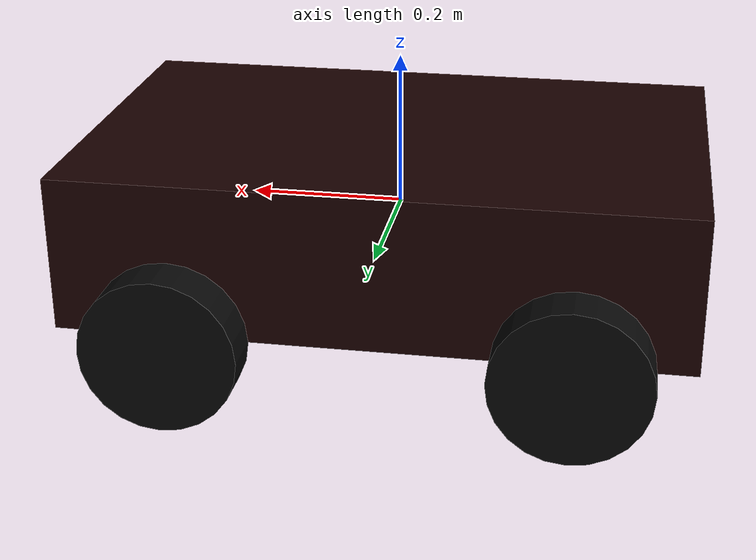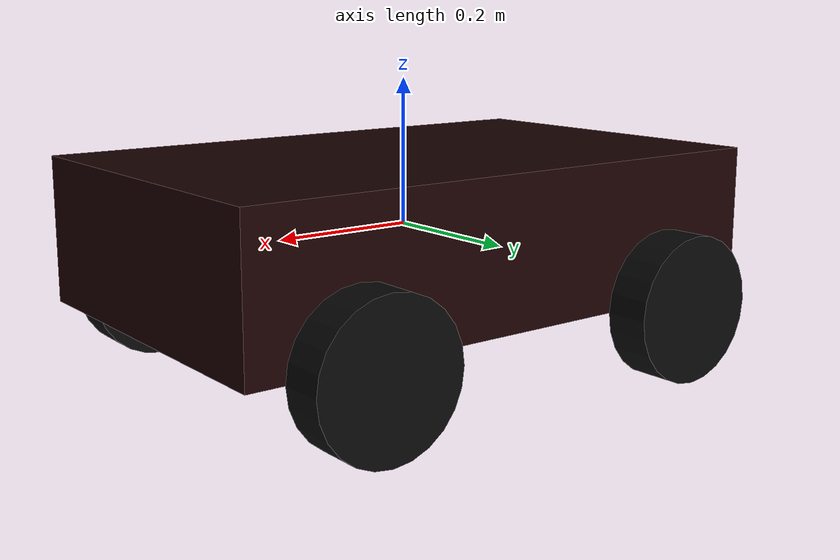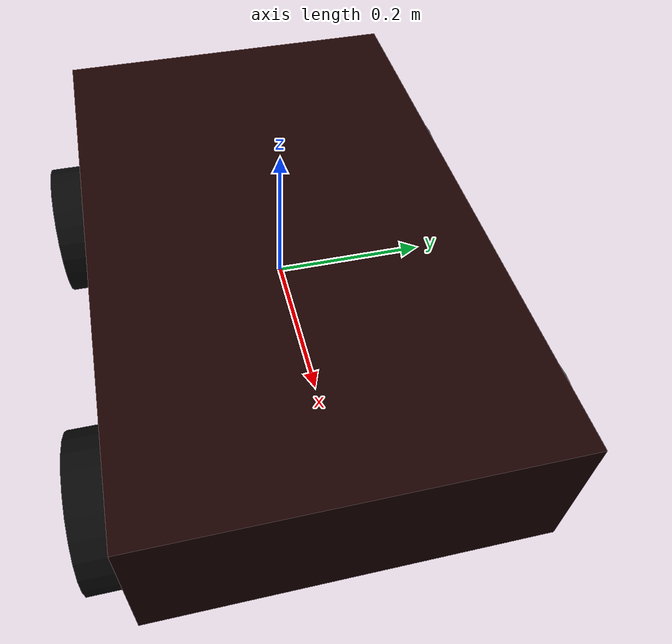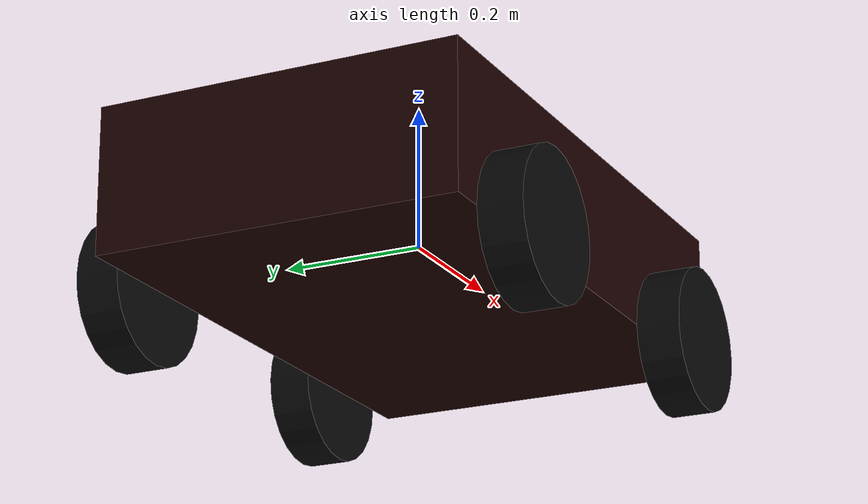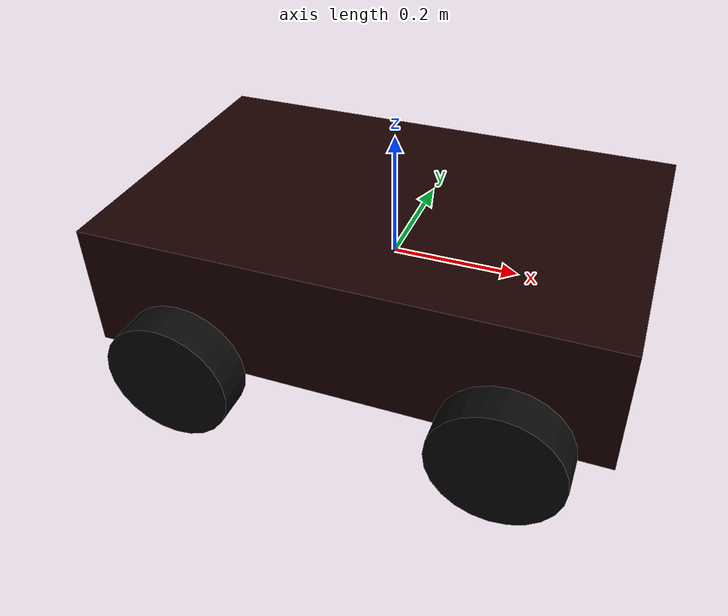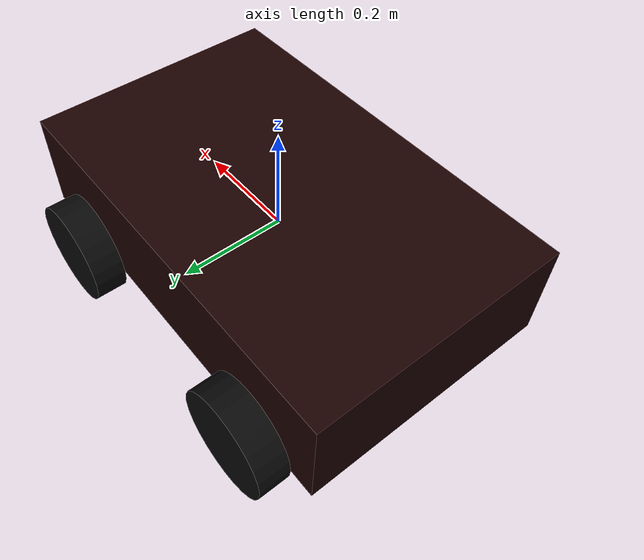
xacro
<?xml version="1.0"?>

<robot
    xmlns:xacro="http://www.ros.org/wiki/xacro"
    name="my_robot">

    <link name="base_link">

        <visual>
            <origin xyz="0 0 0" rpy="0 0 0"/>

            <geometry>
                <box size="0.8 0.5 0.2"/>
            </geometry>

            <material name="red">
                <color rgba="0.1 0.0 0.0 1.0"/>
            </material>
        </visual>

        <collision>
            <origin xyz="0 0 0" rpy="0 0 0"/>

            <geometry>
                <box size="0.8 0.5 0.2"/>
            </geometry>
        </collision>

        <inertial>
            <mass value="5.0"/>

            <inertia
                ixx="0.1208"
                ixy="0.0"
                ixz="0.0"
                iyy="0.2833"
                iyz="0.0"
                izz="0.3708"/>
        </inertial>

    </link>

    <!-- SOL ÖN TEKERLEK                                   -->

    <link name="front_left_wheel_link">

        <visual>
            <origin xyz="0 0 0" rpy="1.5708 0 0"/>

            <geometry>
                <cylinder radius="0.1" length="0.06"/>
            </geometry>

            <material name="wheel_black">
                <color rgba="0.03 0.03 0.03 1.0"/>
            </material>
        </visual>

        <collision>
            <origin xyz="0 0 0" rpy="1.5708 0 0"/>

            <geometry>
                <cylinder radius="0.1" length="0.06"/>
            </geometry>
        </collision>

        <inertial>
            <mass value="0.3"/>

            <inertia
                ixx="0.00084"
                ixy="0.0"
                ixz="0.0"
                iyy="0.0015"
                iyz="0.0"
                izz="0.00084"/>
        </inertial>

    </link>

    <!-- Sol ön tekerleği gövdeye bağlar -->
    <joint name="front_left_wheel_joint" type="continuous">

        <parent link="base_link"/>
        <child link="front_left_wheel_link"/>

        <origin xyz="0.25 0.28 -0.1" rpy="0 0 0"/>

        <axis xyz="0 1 0"/>

    </joint>

    <!-- SAĞ ÖN TEKERLEK                                   -->

    <link name="front_right_wheel_link">

        <visual>
            <origin xyz="0 0 0" rpy="1.5708 0 0"/>

            <geometry>
                <cylinder radius="0.1" length="0.06"/>
            </geometry>

            <material name="wheel_black">
                <color rgba="0.03 0.03 0.03 1.0"/>
            </material>
        </visual>

        <collision>
            <origin xyz="0 0 0" rpy="1.5708 0 0"/>

            <geometry>
                <cylinder radius="0.1" length="0.06"/>
            </geometry>
        </collision>

        <inertial>
            <mass value="0.3"/>

            <inertia
                ixx="0.00084"
                ixy="0.0"
                ixz="0.0"
                iyy="0.0015"
                iyz="0.0"
                izz="0.00084"/>
        </inertial>

    </link>

    <!-- Sağ ön tekerleği gövdeye bağlar -->
    <joint name="front_right_wheel_joint" type="continuous">

        <parent link="base_link"/>
        <child link="front_right_wheel_link"/>

        <origin xyz="0.25 -0.28 -0.1" rpy="0 0 0"/>

        <axis xyz="0 1 0"/>

    </joint>

    <!-- SOL ARKA TEKERLEK                                 -->

    <link name="rear_left_wheel_link">

        <visual>
            <origin xyz="0 0 0" rpy="1.5708 0 0"/>

            <geometry>
                <cylinder radius="0.1" length="0.06"/>
            </geometry>

            <material name="wheel_black">
                <color rgba="0.03 0.03 0.03 1.0"/>
            </material>
        </visual>

        <collision>
            <origin xyz="0 0 0" rpy="1.5708 0 0"/>

            <geometry>
                <cylinder radius="0.1" length="0.06"/>
            </geometry>
        </collision>

        <inertial>
            <mass value="0.3"/>

            <inertia
                ixx="0.00084"
                ixy="0.0"
                ixz="0.0"
                iyy="0.0015"
                iyz="0.0"
                izz="0.00084"/>
        </inertial>

    </link>

    <!-- Sol arka tekerleği gövdeye bağlar -->
    <joint name="rear_left_wheel_joint" type="continuous">

        <parent link="base_link"/>
        <child link="rear_left_wheel_link"/>

        <origin xyz="-0.25 0.28 -0.1" rpy="0 0 0"/>

        <axis xyz="0 1 0"/>

    </joint>

    <!-- SAĞ ARKA TEKERLEK                                 -->

    <link name="rear_right_wheel_link">

        <visual>
            <origin xyz="0 0 0" rpy="1.5708 0 0"/>

            <geometry>
                <cylinder radius="0.1" length="0.06"/>
            </geometry>

            <material name="wheel_black">
                <color rgba="0.03 0.03 0.03 1.0"/>
            </material>
        </visual>

        <collision>
            <origin xyz="0 0 0" rpy="1.5708 0 0"/>

            <geometry>
                <cylinder radius="0.1" length="0.06"/>
            </geometry>
        </collision>

        <inertial>
            <mass value="0.3"/>

            <inertia
                ixx="0.00084"
                ixy="0.0"
                ixz="0.0"
                iyy="0.0015"
                iyz="0.0"
                izz="0.00084"/>
        </inertial>

    </link>

    <!-- Sağ arka tekerleği gövdeye bağlar -->
    <joint name="rear_right_wheel_joint" type="continuous">

        <parent link="base_link"/>
        <child link="rear_right_wheel_link"/>

        <origin xyz="-0.25 -0.28 -0.1" rpy="0 0 0"/>

        <axis xyz="0 1 0"/>

    </joint>

    <!-- Kamera gövdesi -->
    <link name="camera_link">
        <collision>
            <geometry>
                <box size="0.08 0.12 0.08"/>
            </geometry>
        </collision>

        <inertial>
            <mass value="0.1"/>

            <inertia
                ixx="0.00017"
                ixy="0.0"
                ixz="0.0"
                iyy="0.00011"
                iyz="0.0"
                izz="0.00017"/>
        </inertial>

    </link>

    <!-- Kamerayı araç gövdesine bağlar -->
    <joint name="camera_joint" type="fixed">

        <parent link="base_link"/>
        <child link="camera_link"/>

        <origin xyz="0.42 0 0.15" rpy="0 0 0"/>

    </joint>

    <!-- Kamera görüntüsünün koordinat sistemi -->
    <link name="camera_optical_link"/>

    <joint name="camera_optical_joint" type="fixed">

        <parent link="camera_link"/>
        <child link="camera_optical_link"/>

        <origin
            xyz="0 0 0"
            rpy="-1.5708 0 -1.5708"/>

    </joint>

    <!-- Gazebo kamera sensörü -->
    <gazebo reference="camera_link">

        <sensor name="front_camera" type="camera">

            <always_on>true</always_on>
            <update_rate>30.0</update_rate>
            <visualize>false</visualize>

            <camera name="front_camera">

                <horizontal_fov>1.396</horizontal_fov>

                <image>
                    <width>640</width>
                    <height>480</height>
                    <format>R8G8B8</format>
                </image>

                <clip>
                    <near>0.02</near>
                    <far>100.0</far>
                </clip>

            </camera>

            <plugin
                name="camera_controller"
                filename="libgazebo_ros_camera.so">

                <ros>
                    <namespace>/camera</namespace>
                </ros>

                <camera_name>front_camera</camera_name>
                <frame_name>camera_optical_link</frame_name>

            </plugin>

        </sensor>

    </gazebo>

        <!-- Sol ön tekerleğin Gazebo ayarları -->
    <gazebo reference="front_left_wheel_link">

        <material>Gazebo/Black</material>

        <mu1>1.0</mu1>
        <mu2>1.0</mu2>

    </gazebo>

    <!-- Sağ ön tekerleğin Gazebo ayarları -->
    <gazebo reference="front_right_wheel_link">

        <material>Gazebo/Black</material>

        <mu1>1.0</mu1>
        <mu2>1.0</mu2>

    </gazebo>

    <!-- Sol arka tekerleğin Gazebo ayarları -->
    <gazebo reference="rear_left_wheel_link">

        <material>Gazebo/Black</material>

        <mu1>1.0</mu1>
        <mu2>1.0</mu2>

    </gazebo>

    <!-- Sağ arka tekerleğin Gazebo ayarları -->
    <gazebo reference="rear_right_wheel_link">

        <material>Gazebo/Black</material>

        <mu1>1.0</mu1>
        <mu2>1.0</mu2>

    </gazebo>

    <!-- DÖRT TEKERLEKLİ HAREKET EKLENTİSİ                 -->

    <gazebo>

        <plugin
            name="skid_steer_drive"
            filename="libgazebo_ros_diff_drive.so">

            <!-- Araçta ön ve arka olmak üzere iki tekerlek çifti var -->
            <num_wheel_pairs>2</num_wheel_pairs>

            <!-- Ön tekerlek çifti -->
            <left_joint>front_left_wheel_joint</left_joint>
            <right_joint>front_right_wheel_joint</right_joint>

            <!-- Arka tekerlek çifti -->
            <left_joint>rear_left_wheel_joint</left_joint>
            <right_joint>rear_right_wheel_joint</right_joint>

            <!-- Ön tekerleklerin sağ-sol arasındaki uzaklığı -->
            <wheel_separation>0.56</wheel_separation>

            <!-- Arka tekerleklerin sağ-sol arasındaki uzaklığı -->
            <wheel_separation>0.56</wheel_separation>

            <!-- Ön tekerleklerin çapı -->
            <wheel_diameter>0.20</wheel_diameter>

            <!-- Arka tekerleklerin çapı -->
            <wheel_diameter>0.20</wheel_diameter>

            <!-- Tekerleklere uygulanabilecek en yüksek kuvvet -->
            <max_wheel_torque>20.0</max_wheel_torque>

            <!-- Tekerleklerin hızlanma sınırı -->
            <max_wheel_acceleration>2.0</max_wheel_acceleration>

            <!-- Aracın konum bilgisini yayınla -->
            <publish_odom>true</publish_odom>

            <!-- Odom ile araç arasındaki dönüşümü yayınla -->
            <publish_odom_tf>true</publish_odom_tf>

            <!-- Tekerleklerin dönüşümlerini yayınla -->
            <publish_wheel_tf>true</publish_wheel_tf>

            <!-- Konum bilgisinin koordinat sistemi -->
            <odometry_frame>odom</odometry_frame>

            <!-- Aracın ana koordinat sistemi -->
            <robot_base_frame>base_link</robot_base_frame>

        </plugin>

    </gazebo>

</robot>
